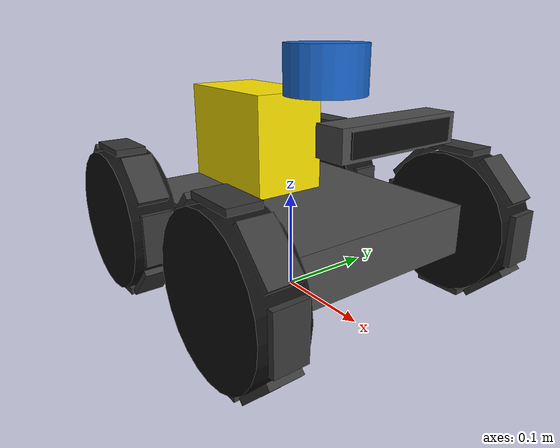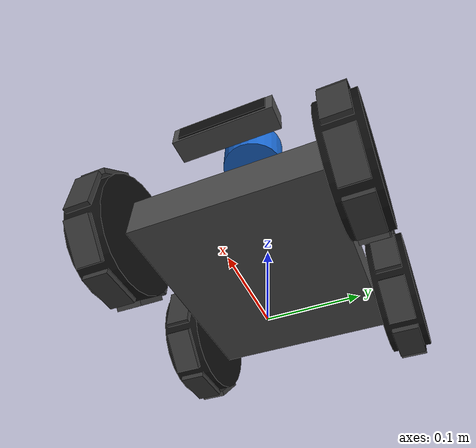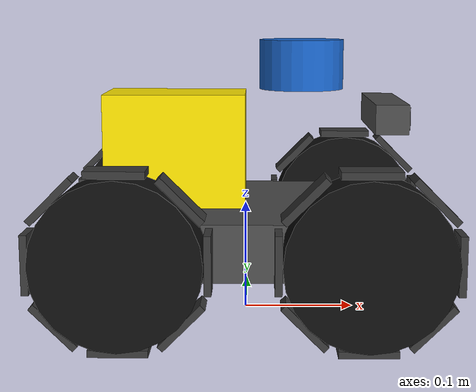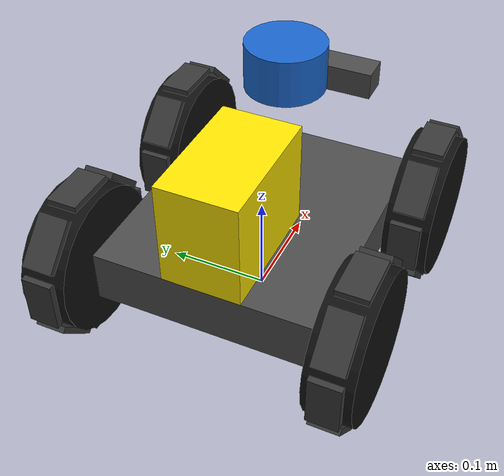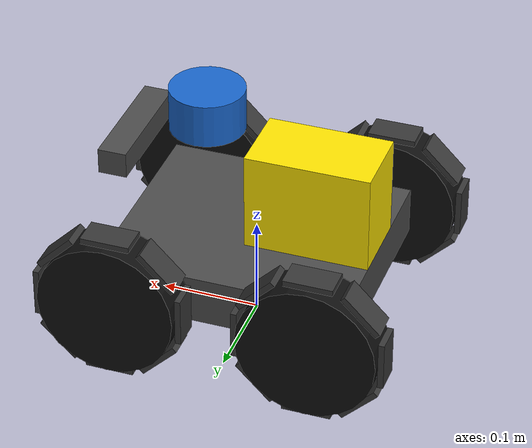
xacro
<?xml version="1.0"?>
<robot name="rover" xmlns:xacro="http://www.ros.org/wiki/xacro">

  <material name="gray"><color rgba="0.3 0.3 0.3 1.0"/></material>
  <material name="black"><color rgba="0.06 0.06 0.06 1.0"/></material>
  <material name="tread"><color rgba="0.22 0.22 0.22 1.0"/></material>
  <material name="yellow"><color rgba="1.0 0.9 0.0 1.0"/></material>

  <!-- Tune these to change tread appearance across all wheels -->
  <xacro:property name="wheel_radius"   value="0.0762"/>
  <xacro:property name="wheel_length"   value="0.04445"/>
  <xacro:property name="tread_diameter" value="0.012"/> <!-- groove depth in diameter units; inner_r = wheel_radius - tread_diameter/2 -->
  <xacro:property name="tread_count"    value="8"/>
  <xacro:property name="tread_gap"      value="0.008"/> <!-- tangential gap between blocks (m) -->

  <!-- Derived tread geometry (computed once from properties above) -->
  <xacro:property name="tread_inner_r" value="${wheel_radius - tread_diameter / 2.0}"/>
  <xacro:property name="tread_block_r" value="${wheel_radius - tread_diameter / 4.0}"/>
  <xacro:property name="tread_block_h" value="${tread_diameter / 2.0}"/>
  <xacro:property name="tread_block_w" value="${2.0 * pi * tread_block_r / tread_count - tread_gap}"/>
  <xacro:property name="tread_block_l" value="${wheel_length - 0.015}"/>

  <link name="base_footprint"/>
  <joint name="base_footprint_joint" type="fixed">
    <parent link="base_footprint"/>
    <child link="base_link"/>
    <origin xyz="0 0 0.1012" rpy="0 0 0"/>
  </joint>

  <link name="base_link">
    <visual><geometry><box size="0.254 0.2159 0.05"/></geometry><origin xyz="0 0 -0.025"/><material name="gray"/></visual>
    <visual><geometry><box size="0.127 0.0762 0.1016"/></geometry><origin xyz="-0.0635 0 0.0508"/><material name="yellow"/></visual>
    <collision><geometry><box size="0.254 0.2159 0.05"/></geometry></collision>
    <collision><geometry><box size="0.127 0.0762 0.1016"/></geometry><origin xyz="-0.0635 0 0.0508"/></collision>
    <inertial><mass value="2.7"/><inertia ixx="0.02" ixy="0" ixz="0" iyy="0.02" iyz="0" izz="0.02"/></inertial>
  </link>

  <!-- Single tread block geometry, positioned by angle -->
  <xacro:macro name="tread_block" params="angle">
    <visual>
      <geometry><box size="${tread_block_h} ${tread_block_w} ${tread_block_l}"/></geometry>
      <origin xyz="${tread_block_r * cos(angle)} ${tread_block_r * sin(angle)} 0" rpy="0 0 ${angle}"/>
      <material name="tread"/>
    </visual>
  </xacro:macro>

  <!-- Recursively place n tread blocks evenly spaced by step radians -->
  <xacro:macro name="tread_blocks" params="n angle step">
    <xacro:if value="${n > 0}">
      <xacro:tread_block angle="${angle}"/>
      <xacro:tread_blocks n="${n - 1}" angle="${angle + step}" step="${step}"/>
    </xacro:if>
  </xacro:macro>

  <!-- Full tread: groove-floor cylinder + evenly spaced tread blocks -->
  <xacro:macro name="tread">
    <visual><geometry><cylinder radius="${tread_inner_r}" length="${wheel_length}"/></geometry><material name="black"/></visual>
    <xacro:tread_blocks n="${tread_count}" angle="0" step="${2.0 * pi / tread_count}"/>
  </xacro:macro>

  <xacro:macro name="wheel" params="name x y">
    <link name="${name}_wheel">
      <xacro:tread/>
      <collision><geometry><cylinder radius="${wheel_radius}" length="${wheel_length}"/></geometry></collision>
      <inertial><mass value="0.3"/><inertia ixx="0.001" ixy="0" ixz="0" iyy="0.001" iyz="0" izz="0.001"/></inertial>
    </link>
    <joint name="${name}_joint" type="continuous">
      <parent link="base_link"/><child link="${name}_wheel"/>
      <origin xyz="${x} ${y} -0.025" rpy="1.5708 0 0"/>
      <axis xyz="0 0 1"/>
    </joint>
  </xacro:macro>

  <xacro:wheel name="front_left"  x=" 0.1016" y=" 0.13335"/>
  <xacro:wheel name="front_right" x=" 0.1016" y="-0.13335"/>
  <xacro:wheel name="rear_left"   x="-0.1016" y=" 0.13335"/>
  <xacro:wheel name="rear_right"  x="-0.1016" y="-0.13335"/>

  <!-- RPLIDAR A2M12 — mounted in front of the yellow electronics box -->
  <xacro:property name="lidar_radius" value="0.0381"/>
  <xacro:property name="lidar_length" value="0.04445"/>
  <xacro:property name="lidar_x"      value="0.0508"/>  <!-- 2" forward of base_link -->
  <xacro:property name="lidar_z"      value="0.127"/>   <!-- 5" up from base_link -->

  <link name="laser">
    <visual>
      <geometry><cylinder radius="${lidar_radius}" length="${lidar_length}"/></geometry>
      <material name="lidar_blue"><color rgba="0.1 0.4 0.8 1.0"/></material>
    </visual>
    <collision><geometry><cylinder radius="${lidar_radius}" length="${lidar_length}"/></geometry></collision>
    <inertial><mass value="0.17"/><inertia ixx="0.0001" ixy="0" ixz="0" iyy="0.0001" iyz="0" izz="0.0001"/></inertial>
  </link>
  <joint name="laser_joint" type="fixed">
    <parent link="base_link"/>
    <child link="laser"/>
    <origin xyz="${lidar_x} 0.0 ${lidar_z}" rpy="0 0 ${pi}"/>
  </joint>

  <xacro:macro name="d455_camera" params="name parent xyz rpy">
    <link name="${name}">
      <visual> <!-- grey body -->
        <geometry><box size="0.029 0.124 0.026"/></geometry>
        <material name="gray"/>
      </visual>
      <visual> <!-- black glass front (lens window) -->
        <origin xyz="0.0145 0 0"/>
        <geometry><box size="0.004 0.108 0.020"/></geometry>
        <material name="black"/>
      </visual>
      <inertial><mass value="0.072"/><inertia ixx="0.0001" ixy="0" ixz="0" iyy="0.0001" iyz="0" izz="0.0001"/></inertial>
    </link>
    <joint name="${name}_joint" type="fixed">
      <parent link="${parent}"/>
      <child link="${name}"/>
      <origin xyz="${xyz}" rpy="${rpy}"/>
    </joint>
  </xacro:macro>

  <!-- 5" forward, 3.25" up from base_link -->
  <xacro:d455_camera name="camera_link" parent="base_link" rpy="0 0 0"
      xyz="0.127 0 0.08255"/>

</robot>
